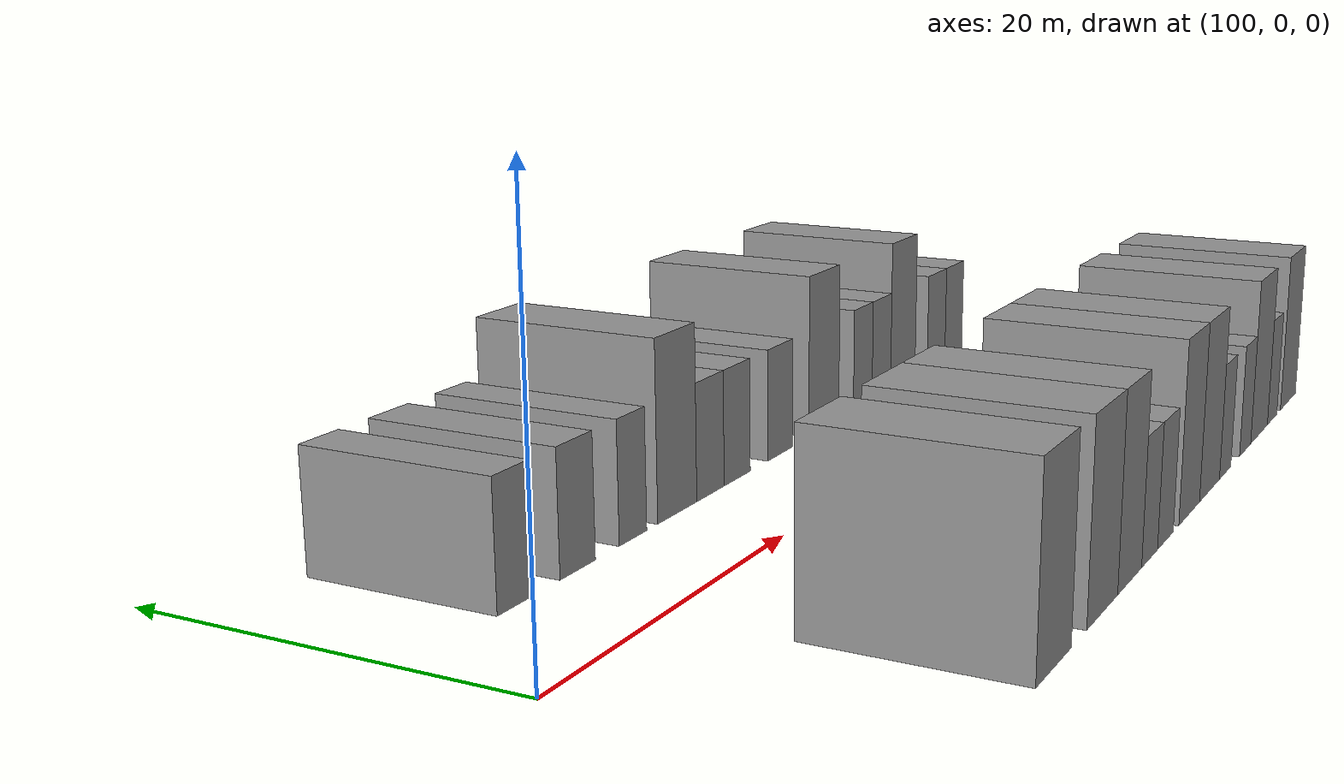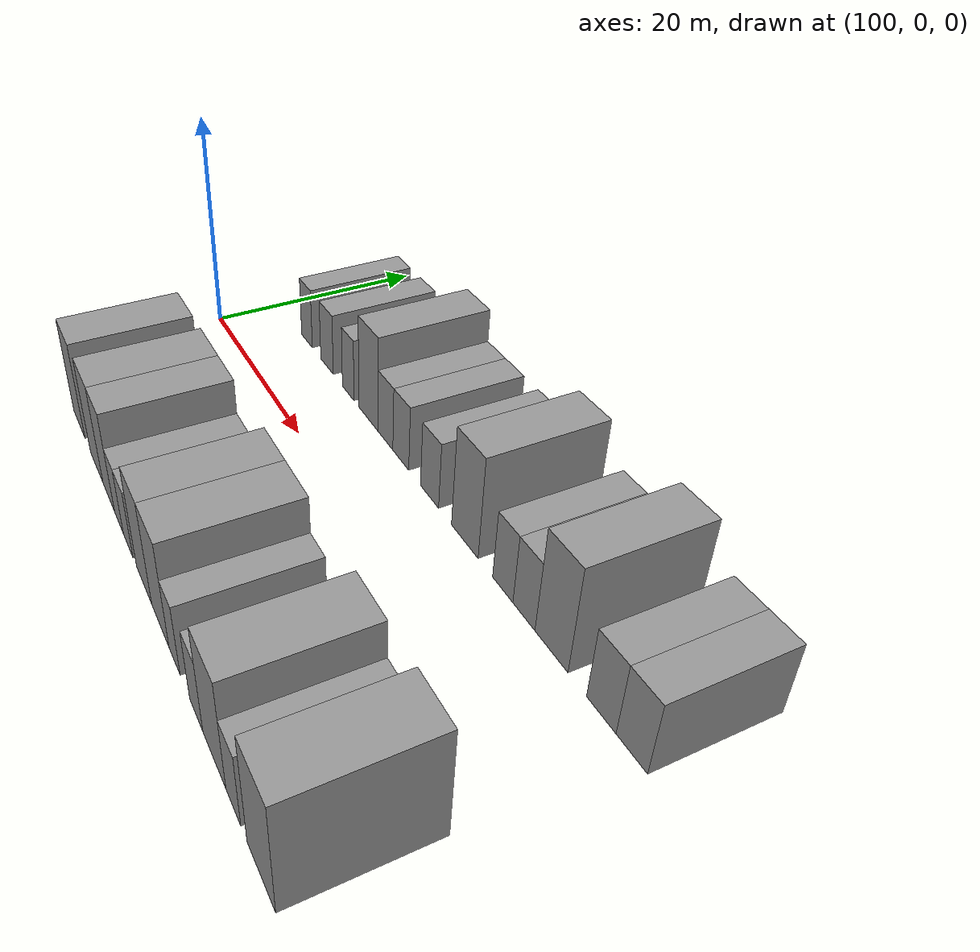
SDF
<sdf version="1.6">
 <world name="default">
  <model name="building_26">
   <static>1</static>
   <pose>107.2068 11.0000 0 0.000000 0.000000 1.570796</pose>
   <link name="link">
    <pose>0 0 3.00 0 0 0</pose>
    <collision name="collision"><geometry><box><size>10.0000 2.5972 6.0000</size></box></geometry></collision>
    <visual name="visual">
     <cast_shadows>0</cast_shadows>
     <geometry><box><size>10.0000 2.5972 6.0000</size></box></geometry>
     <material>
      <script>
       <uri>model://grey_wall/materials/scripts</uri>
       <uri>model://grey_wall/materials/textures</uri>
       <name>vrc/grey_wall</name>
      </script>
     </material>
    </visual>
   </link>
  </model>
  <model name="building_27">
   <static>1</static>
   <pose>111.9166 11.0000 0 0.000000 0.000000 1.570796</pose>
   <link name="link">
    <pose>0 0 3.00 0 0 0</pose>
    <collision name="collision"><geometry><box><size>10.0000 2.8224 6.0000</size></box></geometry></collision>
    <visual name="visual">
     <cast_shadows>0</cast_shadows>
     <geometry><box><size>10.0000 2.8224 6.0000</size></box></geometry>
     <material>
      <script>
       <uri>model://grey_wall/materials/scripts</uri>
       <uri>model://grey_wall/materials/textures</uri>
       <name>vrc/grey_wall</name>
      </script>
     </material>
    </visual>
   </link>
  </model>
  <model name="building_28">
   <static>1</static>
   <pose>116.5382 11.0000 0 0.000000 0.000000 1.570796</pose>
   <link name="link">
    <pose>0 0 3.00 0 0 0</pose>
    <collision name="collision"><geometry><box><size>10.0000 2.4210 6.0000</size></box></geometry></collision>
    <visual name="visual">
     <cast_shadows>0</cast_shadows>
     <geometry><box><size>10.0000 2.4210 6.0000</size></box></geometry>
     <material>
      <script>
       <uri>model://grey_wall/materials/scripts</uri>
       <uri>model://grey_wall/materials/textures</uri>
       <name>vrc/grey_wall</name>
      </script>
     </material>
    </visual>
   </link>
  </model>
  <model name="building_29">
   <static>1</static>
   <pose>120.6174 11.0000 0 0.000000 0.000000 1.570796</pose>
   <link name="link">
    <pose>0 0 4.50 0 0 0</pose>
    <collision name="collision"><geometry><box><size>10.0000 3.7374 9.0000</size></box></geometry></collision>
    <visual name="visual">
     <cast_shadows>0</cast_shadows>
     <geometry><box><size>10.0000 3.7374 9.0000</size></box></geometry>
     <material>
      <script>
       <uri>model://grey_wall/materials/scripts</uri>
       <uri>model://grey_wall/materials/textures</uri>
       <name>vrc/grey_wall</name>
      </script>
     </material>
    </visual>
   </link>
  </model>
  <model name="building_30">
   <static>1</static>
   <pose>123.8850 11.0000 0 0.000000 0.000000 1.570796</pose>
   <link name="link">
    <pose>0 0 3.00 0 0 0</pose>
    <collision name="collision"><geometry><box><size>10.0000 2.7978 6.0000</size></box></geometry></collision>
    <visual name="visual">
     <cast_shadows>0</cast_shadows>
     <geometry><box><size>10.0000 2.7978 6.0000</size></box></geometry>
     <material>
      <script>
       <uri>model://grey_wall/materials/scripts</uri>
       <uri>model://grey_wall/materials/textures</uri>
       <name>vrc/grey_wall</name>
      </script>
     </material>
    </visual>
   </link>
  </model>
  <model name="building_31">
   <static>1</static>
   <pose>126.6897 11.0000 0 0.000000 0.000000 1.570796</pose>
   <link name="link">
    <pose>0 0 3.00 0 0 0</pose>
    <collision name="collision"><geometry><box><size>10.0000 2.8115 6.0000</size></box></geometry></collision>
    <visual name="visual">
     <cast_shadows>0</cast_shadows>
     <geometry><box><size>10.0000 2.8115 6.0000</size></box></geometry>
     <material>
      <script>
       <uri>model://grey_wall/materials/scripts</uri>
       <uri>model://grey_wall/materials/textures</uri>
       <name>vrc/grey_wall</name>
      </script>
     </material>
    </visual>
   </link>
  </model>
  <model name="building_32">
   <static>1</static>
   <pose>131.5565 11.0000 0 0.000000 0.000000 1.570796</pose>
   <link name="link">
    <pose>0 0 3.00 0 0 0</pose>
    <collision name="collision"><geometry><box><size>10.0000 2.9222 6.0000</size></box></geometry></collision>
    <visual name="visual">
     <cast_shadows>0</cast_shadows>
     <geometry><box><size>10.0000 2.9222 6.0000</size></box></geometry>
     <material>
      <script>
       <uri>model://grey_wall/materials/scripts</uri>
       <uri>model://grey_wall/materials/textures</uri>
       <name>vrc/grey_wall</name>
      </script>
     </material>
    </visual>
   </link>
  </model>
  <model name="building_33">
   <static>1</static>
   <pose>136.9534 11.0000 0 0.000000 0.000000 1.570796</pose>
   <link name="link">
    <pose>0 0 4.50 0 0 0</pose>
    <collision name="collision"><geometry><box><size>10.0000 3.8716 9.0000</size></box></geometry></collision>
    <visual name="visual">
     <cast_shadows>0</cast_shadows>
     <geometry><box><size>10.0000 3.8716 9.0000</size></box></geometry>
     <material>
      <script>
       <uri>model://grey_wall/materials/scripts</uri>
       <uri>model://grey_wall/materials/textures</uri>
       <name>vrc/grey_wall</name>
      </script>
     </material>
    </visual>
   </link>
  </model>
  <model name="building_34">
   <static>1</static>
   <pose>142.2126 11.0000 0 0.000000 0.000000 1.570796</pose>
   <link name="link">
    <pose>0 0 3.00 0 0 0</pose>
    <collision name="collision"><geometry><box><size>10.0000 2.6468 6.0000</size></box></geometry></collision>
    <visual name="visual">
     <cast_shadows>0</cast_shadows>
     <geometry><box><size>10.0000 2.6468 6.0000</size></box></geometry>
     <material>
      <script>
       <uri>model://grey_wall/materials/scripts</uri>
       <uri>model://grey_wall/materials/textures</uri>
       <name>vrc/grey_wall</name>
      </script>
     </material>
    </visual>
   </link>
  </model>
  <model name="building_35">
   <static>1</static>
   <pose>144.9027 11.0000 0 0.000000 0.000000 1.570796</pose>
   <link name="link">
    <pose>0 0 3.00 0 0 0</pose>
    <collision name="collision"><geometry><box><size>10.0000 2.7334 6.0000</size></box></geometry></collision>
    <visual name="visual">
     <cast_shadows>0</cast_shadows>
     <geometry><box><size>10.0000 2.7334 6.0000</size></box></geometry>
     <material>
      <script>
       <uri>model://grey_wall/materials/scripts</uri>
       <uri>model://grey_wall/materials/textures</uri>
       <name>vrc/grey_wall</name>
      </script>
     </material>
    </visual>
   </link>
  </model>
  <model name="building_36">
   <static>1</static>
   <pose>148.1741 11.0000 0 0.000000 0.000000 1.570796</pose>
   <link name="link">
    <pose>0 0 4.50 0 0 0</pose>
    <collision name="collision"><geometry><box><size>10.0000 3.8094 9.0000</size></box></geometry></collision>
    <visual name="visual">
     <cast_shadows>0</cast_shadows>
     <geometry><box><size>10.0000 3.8094 9.0000</size></box></geometry>
     <material>
      <script>
       <uri>model://grey_wall/materials/scripts</uri>
       <uri>model://grey_wall/materials/textures</uri>
       <name>vrc/grey_wall</name>
      </script>
     </material>
    </visual>
   </link>
  </model>
  <model name="building_37">
   <static>1</static>
   <pose>153.5771 11.0000 0 0.000000 0.000000 1.570796</pose>
   <link name="link">
    <pose>0 0 3.00 0 0 0</pose>
    <collision name="collision"><geometry><box><size>10.0000 2.9965 6.0000</size></box></geometry></collision>
    <visual name="visual">
     <cast_shadows>0</cast_shadows>
     <geometry><box><size>10.0000 2.9965 6.0000</size></box></geometry>
     <material>
      <script>
       <uri>model://grey_wall/materials/scripts</uri>
       <uri>model://grey_wall/materials/textures</uri>
       <name>vrc/grey_wall</name>
      </script>
     </material>
    </visual>
   </link>
  </model>
  <model name="building_38">
   <static>1</static>
   <pose>156.5708 11.0000 0 0.000000 0.000000 1.570796</pose>
   <link name="link">
    <pose>0 0 3.00 0 0 0</pose>
    <collision name="collision"><geometry><box><size>10.0000 2.9910 6.0000</size></box></geometry></collision>
    <visual name="visual">
     <cast_shadows>0</cast_shadows>
     <geometry><box><size>10.0000 2.9910 6.0000</size></box></geometry>
     <material>
      <script>
       <uri>model://grey_wall/materials/scripts</uri>
       <uri>model://grey_wall/materials/textures</uri>
       <name>vrc/grey_wall</name>
      </script>
     </material>
    </visual>
   </link>
  </model>
  <model name="building_76">
   <static>1</static>
   <pose>111.1537 -11.0000 0 0.000000 0.000000 1.570796</pose>
   <link name="link">
    <pose>0 0 4.50 0 0 0</pose>
    <collision name="collision"><geometry><box><size>10.0000 4.2440 9.0000</size></box></geometry></collision>
    <visual name="visual">
     <cast_shadows>0</cast_shadows>
     <geometry><box><size>10.0000 4.2440 9.0000</size></box></geometry>
     <material>
      <script>
       <uri>model://grey_wall/materials/scripts</uri>
       <uri>model://grey_wall/materials/textures</uri>
       <name>vrc/grey_wall</name>
      </script>
     </material>
    </visual>
   </link>
  </model>
  <model name="building_77">
   <static>1</static>
   <pose>117.4256 -11.0000 0 0.000000 0.000000 1.570796</pose>
   <link name="link">
    <pose>0 0 4.50 0 0 0</pose>
    <collision name="collision"><geometry><box><size>10.0000 4.2996 9.0000</size></box></geometry></collision>
    <visual name="visual">
     <cast_shadows>0</cast_shadows>
     <geometry><box><size>10.0000 4.2996 9.0000</size></box></geometry>
     <material>
      <script>
       <uri>model://grey_wall/materials/scripts</uri>
       <uri>model://grey_wall/materials/textures</uri>
       <name>vrc/grey_wall</name>
      </script>
     </material>
    </visual>
   </link>
  </model>
  <model name="building_78">
   <static>1</static>
   <pose>121.4001 -11.0000 0 0.000000 0.000000 1.570796</pose>
   <link name="link">
    <pose>0 0 4.50 0 0 0</pose>
    <collision name="collision"><geometry><box><size>10.0000 3.6494 9.0000</size></box></geometry></collision>
    <visual name="visual">
     <cast_shadows>0</cast_shadows>
     <geometry><box><size>10.0000 3.6494 9.0000</size></box></geometry>
     <material>
      <script>
       <uri>model://grey_wall/materials/scripts</uri>
       <uri>model://grey_wall/materials/textures</uri>
       <name>vrc/grey_wall</name>
      </script>
     </material>
    </visual>
   </link>
  </model>
  <model name="building_79">
   <static>1</static>
   <pose>124.5179 -11.0000 0 0.000000 0.000000 1.570796</pose>
   <link name="link">
    <pose>0 0 3.00 0 0 0</pose>
    <collision name="collision"><geometry><box><size>10.0000 2.5863 6.0000</size></box></geometry></collision>
    <visual name="visual">
     <cast_shadows>0</cast_shadows>
     <geometry><box><size>10.0000 2.5863 6.0000</size></box></geometry>
     <material>
      <script>
       <uri>model://grey_wall/materials/scripts</uri>
       <uri>model://grey_wall/materials/textures</uri>
       <name>vrc/grey_wall</name>
      </script>
     </material>
    </visual>
   </link>
  </model>
  <model name="building_80">
   <static>1</static>
   <pose>127.1703 -11.0000 0 0.000000 0.000000 1.570796</pose>
   <link name="link">
    <pose>0 0 3.00 0 0 0</pose>
    <collision name="collision"><geometry><box><size>10.0000 2.7184 6.0000</size></box></geometry></collision>
    <visual name="visual">
     <cast_shadows>0</cast_shadows>
     <geometry><box><size>10.0000 2.7184 6.0000</size></box></geometry>
     <material>
      <script>
       <uri>model://grey_wall/materials/scripts</uri>
       <uri>model://grey_wall/materials/textures</uri>
       <name>vrc/grey_wall</name>
      </script>
     </material>
    </visual>
   </link>
  </model>
  <model name="building_81">
   <static>1</static>
   <pose>131.4827 -11.0000 0 0.000000 0.000000 1.570796</pose>
   <link name="link">
    <pose>0 0 4.50 0 0 0</pose>
    <collision name="collision"><geometry><box><size>10.0000 3.9064 9.0000</size></box></geometry></collision>
    <visual name="visual">
     <cast_shadows>0</cast_shadows>
     <geometry><box><size>10.0000 3.9064 9.0000</size></box></geometry>
     <material>
      <script>
       <uri>model://grey_wall/materials/scripts</uri>
       <uri>model://grey_wall/materials/textures</uri>
       <name>vrc/grey_wall</name>
      </script>
     </material>
    </visual>
   </link>
  </model>
  <model name="building_82">
   <static>1</static>
   <pose>135.4788 -11.0000 0 0.000000 0.000000 1.570796</pose>
   <link name="link">
    <pose>0 0 4.50 0 0 0</pose>
    <collision name="collision"><geometry><box><size>10.0000 4.0857 9.0000</size></box></geometry></collision>
    <visual name="visual">
     <cast_shadows>0</cast_shadows>
     <geometry><box><size>10.0000 4.0857 9.0000</size></box></geometry>
     <material>
      <script>
       <uri>model://grey_wall/materials/scripts</uri>
       <uri>model://grey_wall/materials/textures</uri>
       <name>vrc/grey_wall</name>
      </script>
     </material>
    </visual>
   </link>
  </model>
  <model name="building_83">
   <static>1</static>
   <pose>138.7506 -11.0000 0 0.000000 0.000000 1.570796</pose>
   <link name="link">
    <pose>0 0 3.00 0 0 0</pose>
    <collision name="collision"><geometry><box><size>10.0000 2.4579 6.0000</size></box></geometry></collision>
    <visual name="visual">
     <cast_shadows>0</cast_shadows>
     <geometry><box><size>10.0000 2.4579 6.0000</size></box></geometry>
     <material>
      <script>
       <uri>model://grey_wall/materials/scripts</uri>
       <uri>model://grey_wall/materials/textures</uri>
       <name>vrc/grey_wall</name>
      </script>
     </material>
    </visual>
   </link>
  </model>
  <model name="building_84">
   <static>1</static>
   <pose>143.2976 -11.0000 0 0.000000 0.000000 1.570796</pose>
   <link name="link">
    <pose>0 0 3.00 0 0 0</pose>
    <collision name="collision"><geometry><box><size>10.0000 2.6361 6.0000</size></box></geometry></collision>
    <visual name="visual">
     <cast_shadows>0</cast_shadows>
     <geometry><box><size>10.0000 2.6361 6.0000</size></box></geometry>
     <material>
      <script>
       <uri>model://grey_wall/materials/scripts</uri>
       <uri>model://grey_wall/materials/textures</uri>
       <name>vrc/grey_wall</name>
      </script>
     </material>
    </visual>
   </link>
  </model>
  <model name="building_85">
   <static>1</static>
   <pose>146.7163 -11.0000 0 0.000000 0.000000 1.570796</pose>
   <link name="link">
    <pose>0 0 4.50 0 0 0</pose>
    <collision name="collision"><geometry><box><size>10.0000 4.2013 9.0000</size></box></geometry></collision>
    <visual name="visual">
     <cast_shadows>0</cast_shadows>
     <geometry><box><size>10.0000 4.2013 9.0000</size></box></geometry>
     <material>
      <script>
       <uri>model://grey_wall/materials/scripts</uri>
       <uri>model://grey_wall/materials/textures</uri>
       <name>vrc/grey_wall</name>
      </script>
     </material>
    </visual>
   </link>
  </model>
  <model name="building_86">
   <static>1</static>
   <pose>150.0654 -11.0000 0 0.000000 0.000000 1.570796</pose>
   <link name="link">
    <pose>0 0 3.00 0 0 0</pose>
    <collision name="collision"><geometry><box><size>10.0000 2.4969 6.0000</size></box></geometry></collision>
    <visual name="visual">
     <cast_shadows>0</cast_shadows>
     <geometry><box><size>10.0000 2.4969 6.0000</size></box></geometry>
     <material>
      <script>
       <uri>model://grey_wall/materials/scripts</uri>
       <uri>model://grey_wall/materials/textures</uri>
       <name>vrc/grey_wall</name>
      </script>
     </material>
    </visual>
   </link>
  </model>
  <model name="building_87">
   <static>1</static>
   <pose>154.4564 -11.0000 0 0.000000 0.000000 1.570796</pose>
   <link name="link">
    <pose>0 0 4.50 0 0 0</pose>
    <collision name="collision"><geometry><box><size>10.0000 4.2851 9.0000</size></box></geometry></collision>
    <visual name="visual">
     <cast_shadows>0</cast_shadows>
     <geometry><box><size>10.0000 4.2851 9.0000</size></box></geometry>
     <material>
      <script>
       <uri>model://grey_wall/materials/scripts</uri>
       <uri>model://grey_wall/materials/textures</uri>
       <name>vrc/grey_wall</name>
      </script>
     </material>
    </visual>
   </link>
  </model>
 </world>
</sdf>
